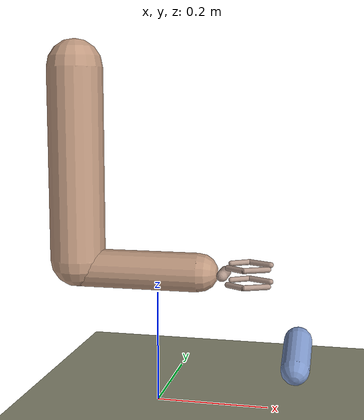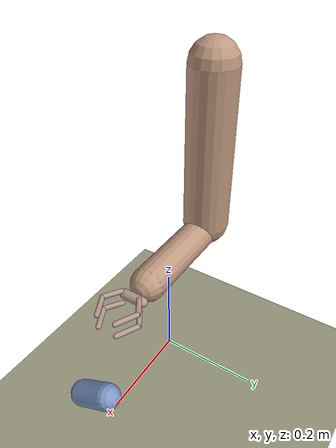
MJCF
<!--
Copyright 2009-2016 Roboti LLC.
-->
<mujoco model="arm_claw (v1.31)">
	<compiler 	inertiafromgeom="true"
				angle="radian"/>

	<size 	nuser_jnt="1"
			nuser_geom="1"/>

	<option	timestep="0.005"
			gravity="0 0 -9.8"
			viscosity="0"
			iterations="20"/>

	<asset>
		<material name="MatGnd" specular=".3" shininess=".3" reflectance="0.3" rgba=".5 .55 .5 1"/>
	</asset>

	<default>
		<joint limited="true" damping="1" stiffness="0" armature=".1" user="0"/>
		<geom solref="0.008 1" solimp="0.95 0.95 0.01" margin="0.001" user="0"/>
		<motor ctrllimited="true" ctrlrange="-1 1"/>
		<position ctrllimited="true"/>

		<default class='0'>
			<geom friction="1 0.005 0.001" rgba=".75 .6 .5 1" contype="1" conaffinity="0"/>
		</default>

		<default class='1'>
			<geom friction="1 0.005 0.001" rgba=".7 .6 .55 1" contype="1" conaffinity="0"/>
		</default>

		<default class='arm'>
			<joint damping="5"/>
		</default>
	</default>

	<worldbody>
		<light directional="true" cutoff="40" exponent="10" diffuse=".4 .4 .4" specular=".7 .7 .7" pos="0 0 1.5" dir="0 0 -1"/>
		<geom name="tableTop" material="MatGnd" type="plane" pos="0.15 0 0" size="0.4 0.6 0.5" rgba=".6 .6 .5 1" contype="1" conaffinity="1"/>

		<!--  ================= ARM ================= /-->
		<body name="upperarm" pos="-0.15 0 0.6">
			<geom class="0" type="capsule" fromto="0 0 0 0 0 -0.345" size="0.05"/>
			<joint class='arm' name="s_abduction" type="hinge" pos="0 0 0" axis="1 0 0" range="-1.57 .7" user="001"/>
			<joint class='arm' name="s_flexion" type="hinge" pos="0 0 0" axis="0 -1 0" range="-.85 1.57" user="002"/>
			<joint class='arm' name="s_rotation" type="hinge" pos="0 0 0" axis="0 0 1" range="-.85 .85" user="003"/>

			<body name="forearm" pos="0 0 -0.36">
				<geom class="0" type="capsule" fromto="0 0 0 0.225 0 0" size="0.035"/>
				<joint class='arm' name="e_flexion" type="hinge" pos="0 0 0" axis="0 -1 0" range="-1.5 1.05" user="004"/>
				<joint class='arm' name="e_pronation" type="hinge" pos="0 0 0" axis="-1 0 0" range="-1.5 1.57" user="005"/>

	<!--  ================= Palm ================= /-->

				<body name="claw" pos="0.27 0 0" quat="0 1 0 0">
					<geom class="1" name="Geomclaw" type="capsule" fromto="0 .02 0 0 -.02 0" size="0.01" />
					<site name = "end-effector" pos = "0 0 0" type="sphere" size = "0.01"/>
					<joint name="w_abduction" type="hinge" pos="0 0 0" axis="0 0 1" range="-.5 .5" user="006"/>
					<joint name="w_flexion" type="hinge" pos="0 0 0" axis="0 -1 0" range="-1.05 1.05" user="007"/>

					<body name="rightclaw" pos=".01 -.02 0" >
						<geom name="rightclaw_it" class="1" type="capsule" fromto="0 0 0.015 .03 -.02 0.015" 	size="0.005" />
						<geom name="rightclaw_ot" class="1" type="capsule" fromto=".03 -.02 0.015 .07 0 0.015" size="0.005" />
						<geom name="rightclaw_ib" class="1" type="capsule" fromto="0 0 -0.015 .03 -.02 -0.015" 	size="0.005" />
						<geom name="rightclaw_ob" class="1" type="capsule" fromto=".03 -.02 -0.015 .07 0 -0.015" size="0.005" />
						<joint name="rc_close" type="hinge" pos="0 0 0" axis="0 0 1" range="-1.05 1.05" user="008"/>
					</body>

					<body name="leftclaw" pos=".01 .02 0">
						<geom name="leftclaw_it" class="1" type="capsule" fromto="0 0 0.015 .03 .02 0.015" 	size="0.005" />
						<geom name="leftclaw_ot" class="1" type="capsule" fromto=".03 .02 0.015 .07 0 0.015" size="0.005" />
						<geom name="leftclaw_ib" class="1" type="capsule" fromto="0 0 -0.015 .03 .02 -0.015" 	size="0.005" />
						<geom name="leftclaw_ob" class="1" type="capsule" fromto=".03 .02 -0.015 .07 0 -0.015" size="0.005" />
						<joint name="lc_close" type="hinge" pos="0 0 0" axis="0 0 1" range="-1.05 1.05" user="009"/>
					</body>

				</body>

			</body>

		</body>

		<!--  ================= OBJECT ================= /-->
		<body name="object" pos="0.25 0 .1" quat=".866 -.5 0 0">
			<geom type="capsule" name="geom_object" size="0.025" fromto="0 0 .035 0 0 -.035" rgba="0.5 0.6 0.8 1" user="1" contype="1" conaffinity="1"/>
			<site name = "object" pos = "0 0 0" type="sphere" size = "0.01"/>
			<joint name="fr" type="free" limited='false' damping="0" armature="0" user="010"/>
		</body>

	</worldbody>

	<actuator>

		<!--  ================= Torque actuators ================= /-->

		<!--  ================= Position actuators ================= /-->
		<position joint='s_abduction' 	name='As_abduction' kp="100" ctrlrange='-1.57 .7'/>
		<position joint='s_flexion' 	name='As_flexion' 	kp="100" ctrlrange='-.85 1.57'/>
		<position joint='s_rotation' 	name='As_rotation' 	kp="100" ctrlrange='-.85 0.85'/>
		<position joint='e_flexion' 	name='Ae_flexion' 	kp="70"  ctrlrange='-1.5 1.05'/>
		<position joint='e_pronation' 	name='Ae_pronation' kp="70"  ctrlrange='-1.5 1.57'/>
		<position joint='w_abduction' 	name='Aw_abduction' kp="30"  ctrlrange='-0.5 0.5'/>
		<position joint='w_flexion' 	name='Aw_flexion' 	kp="30"  ctrlrange='-1.05 1.05'/>
		<position joint='rc_close' 		name='Arc_close' 	kp="10"  ctrlrange='-1.05 1.05'/>
		<position joint='lc_close' 		name='Alc_close' 	kp="10"  ctrlrange='-1.05 1.05'/>

	</actuator>

</mujoco>
